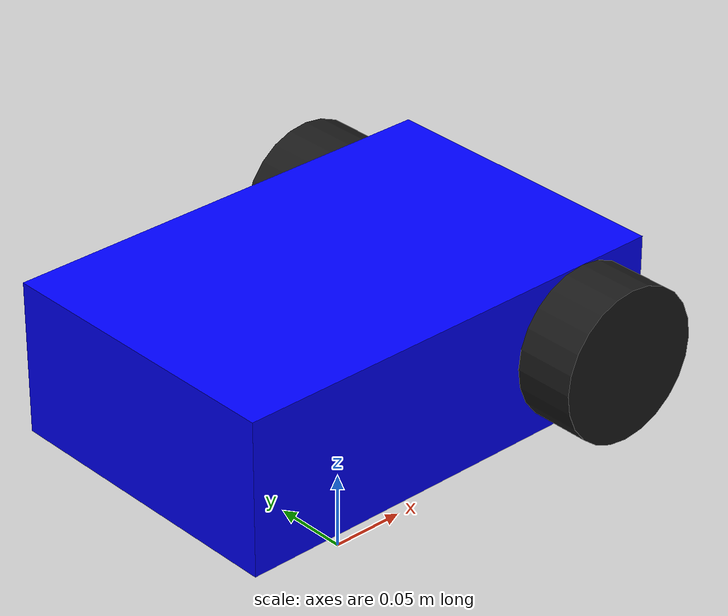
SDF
<?xml version="1.0" ?>
<sdf version="1.8">
  <model name='meu_primeiro_robo' canonical_link='base_link'>
    <pose>0 0 0.1 0 0 0</pose>

    <link name='base_link'>
      <pose relative_to='__model__'>0 0 0.05 0 0 0</pose>
      <inertial>
        <mass>1.0</mass>
        <inertia><ixx>0.0108</ixx><iyy>0.0216</iyy><izz>0.0275</izz></inertia>
      </inertial>
      <visual name='visual'><geometry><box><size>0.3 0.2 0.1</size></box></geometry><material><ambient>0.0 0.0 1.0 1</ambient><diffuse>0.0 0.0 1.0 1</diffuse></material></visual>
      <collision name='collision'><geometry><box><size>0.3 0.2 0.1</size></box></geometry></collision>

      <sensor name='camera_sensor' type='camera'>
        <pose relative_to='base_link'>0.15 0 0.05 0 0 0</pose>
        <camera>
          <horizontal_fov>1.047</horizontal_fov>
          <image><width>640</width><height>480</height></image>
        </camera>
        <always_on>1</always_on>
        <update_rate>30</update_rate>
        <visualize>true</visualize>
        <topic>camera</topic>
      </sensor>

      <sensor name='lidar_sensor' type='gpu_lidar'>
      <pose relative_to='base_link'>0.0 0 0.06 0 0 0</pose>
      <always_on>1</always_on>
      <update_rate>10</update_rate>
      <visualize>true</visualize>
      <topic>/scan</topic>
      <lidar>
        <scan>
          <horizontal>
            <samples>720</samples>
            <resolution>1</resolution>
            <min_angle>-3.14159</min_angle>
            <max_angle>3.14159</max_angle>
          </horizontal>
          <vertical>
            <samples>1</samples>
            <resolution>1</resolution>
            <min_angle>0</min_angle>
            <max_angle>0</max_angle>
          </vertical>
        </scan>
        <range>
          <min>0.1</min>
          <max>12.0</max>
        </range>
      </lidar>
    </sensor>

    </link>

    <link name='left_wheel_link'><pose relative_to="base_link">0.1 0.12 0 -1.5707 0 0</pose><inertial><mass>0.1</mass><inertia><ixx>0.00015</ixx><iyy>0.00015</iyy><izz>0.00012</izz></inertia></inertial><visual name='visual'><geometry><cylinder><radius>0.05</radius><length>0.04</length></cylinder></geometry><material><ambient>0.1 0.1 0.1 1</ambient><diffuse>0.1 0.1 0.1 1</diffuse></material></visual><collision name='collision'><geometry><cylinder><radius>0.05</radius><length>0.04</length></cylinder></geometry></collision></link>
    <link name='right_wheel_link'><pose relative_to="base_link">0.1 -0.12 0 -1.5707 0 0</pose><inertial><mass>0.1</mass><inertia><ixx>0.00015</ixx><iyy>0.00015</iyy><izz>0.00012</izz></inertia></inertial><visual name='visual'><geometry><cylinder><radius>0.05</radius><length>0.04</length></cylinder></geometry><material><ambient>0.1 0.1 0.1 1</ambient><diffuse>0.1 0.1 0.1 1</diffuse></material></visual><collision name='collision'><geometry><cylinder><radius>0.05</radius><length>0.04</length></cylinder></geometry></collision></link>
    <link name='caster_link'><pose relative_to="base_link">-0.1 0 -0.03 0 0 0</pose><inertial><mass>0.05</mass><inertia><ixx>0.00002</ixx><iyy>0.00002</iyy><izz>0.00002</izz></inertia></inertial><visual name='visual'><geometry><sphere><radius>0.02</radius></sphere></geometry><material><ambient>0.1 0.1 0.1 1</ambient><diffuse>0.1 0.1 0.1 1</diffuse></material></visual><collision name='collision'><geometry><sphere><radius>0.02</radius></sphere></geometry></collision></link>

    <joint name='left_wheel_joint' type='revolute'><parent>base_link</parent><child>left_wheel_link</child><axis><xyz expressed_in='__model__'>0 1 0</xyz></axis></joint>
    <joint name='right_wheel_joint' type='revolute'><parent>base_link</parent><child>right_wheel_link</child><axis><xyz expressed_in='__model__'>0 1 0</xyz></axis></joint>
    <joint name='caster_joint' type='ball'><parent>base_link</parent><child>caster_link</child></joint>

    <plugin filename="gz-sim-diff-drive-system" name="gz::sim::systems::DiffDrive"><left_joint>left_wheel_joint</left_joint><right_joint>right_wheel_joint</right_joint><wheel_separation>0.24</wheel_separation><wheel_radius>0.05</wheel_radius><topic>/cmd_vel</topic><odom_topic>/odom</odom_topic></plugin>
  </model>
</sdf>
